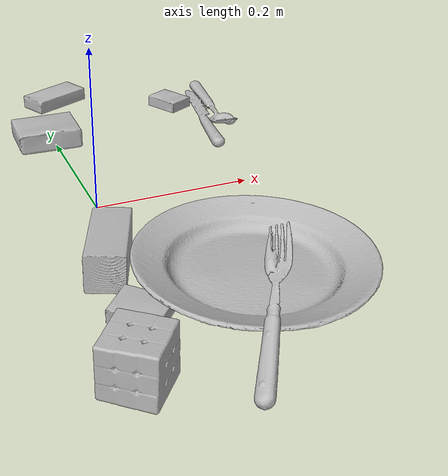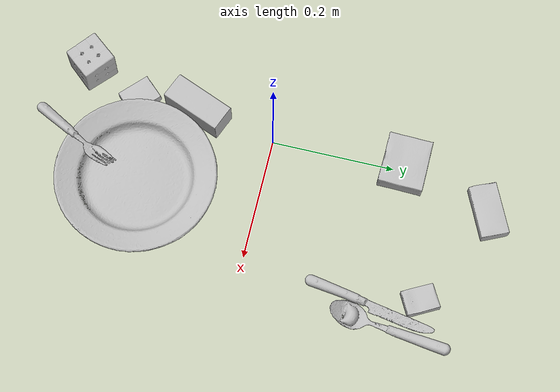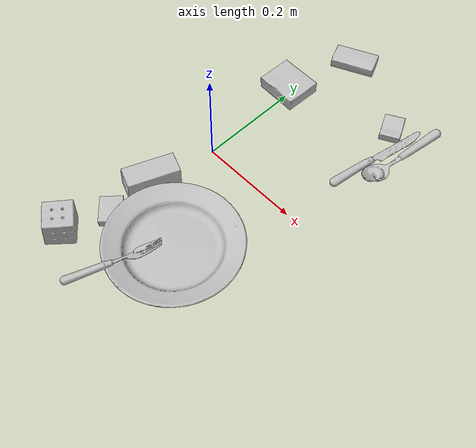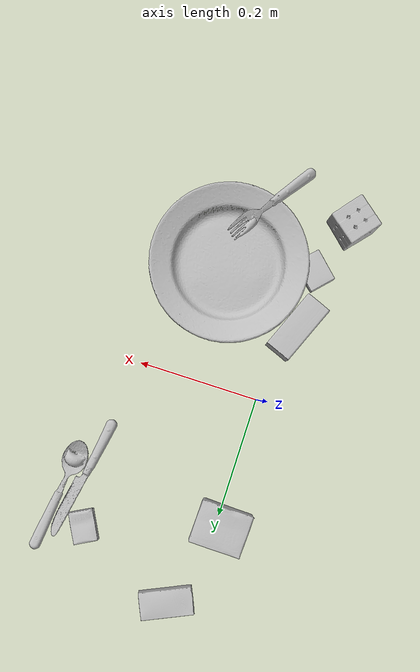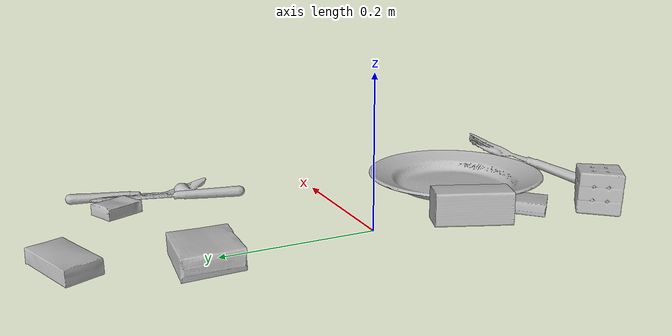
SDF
<sdf version="1.4">
  <world name="default">
    <light name="light1" type="point">
      <pose>0 0 1 0 0 0</pose>
      <diffuse>3 3 3 1</diffuse>
      <specular>3 3 3 1</specular>
    </light>
    <light name="light2" type="point">
      <pose>0 0.5 2 0 0 0</pose>
      <diffuse>1 1 1 1</diffuse>
      <specular>1 1 1 1</specular>
    </light>
    <light name="light3" type="point">
      <pose>0 0.5 2 0 0 0</pose>
      <diffuse>3 3 3 1</diffuse>
      <specular>3 3 3 1</specular>
    </light>
    <scene>
      <ambient>0.7 0.7 0.7</ambient>
    </scene>
    <model name="box11">
      <link name="link_box11">
        <collision name="default">
          <geometry>
            <mesh>
              <uri>model://gelatin_box/collision_meshes/collision.obj</uri>
              <scale>1.0 1.0 1.0</scale>
            </mesh>
          </geometry>
          <surface>
            <friction>
              <ode>
                <mu>0.5</mu>
                <mu2>0.5</mu2>
              </ode>
            </friction>
          <contact>
        <ode>
            <max_vel>0</max_vel>
            <min_depth>0.0001</min_depth>
            <kp>1e8</kp>
        </ode>
    </contact></surface>
        </collision>
        <visual name="default">
          <geometry>
            <mesh>
              <uri>model://gelatin_box/visual_meshes/visual.dae</uri>
              <scale>1.0 1.0 1.0</scale>
            </mesh>
          </geometry>
        </visual>
        <inertial>
          <mass>0.25029057264328003</mass>
          <pose>0.0004319618456065655 0.00011156871914863586 -0.0003640321083366871 -0.0010503719874808634 -0.004755820553863559 0.01644055760983946</pose>
          <inertia>
            <ixx>0.00017668474</ixx>
            <iyy>0.000126205</iyy>
            <izz>0.00026895347</izz>
            <ixy>0</ixy>
            <ixz>0</ixz>
            <iyz>0</iyz>
          </inertia>
        </inertial>
      </link>
      <pose>-0.009668262675404549 0.21617017686367035 0.015168316662311554 0.005596364769116906 -0.007303377698326931 -1.6076392332556992</pose>
    </model>
    <model name="box12">
      <link name="link_box12">
        <collision name="default">
          <geometry>
            <mesh>
              <uri>model://rubiks_cube/collision_meshes/collision.obj</uri>
              <scale>1.0 1.0 1.0</scale>
            </mesh>
          </geometry>
          <surface>
            <friction>
              <ode>
                <mu>0.5</mu>
                <mu2>0.5</mu2>
              </ode>
            </friction>
          <contact>
        <ode>
            <max_vel>0</max_vel>
            <min_depth>0.0001</min_depth>
            <kp>1e8</kp>
        </ode>
    </contact></surface>
        </collision>
        <visual name="default">
          <geometry>
            <mesh>
              <uri>model://rubiks_cube/visual_meshes/visual.dae</uri>
              <scale>1.0 1.0 1.0</scale>
            </mesh>
          </geometry>
        </visual>
        <inertial>
          <mass>0.21638615429401398</mass>
          <pose>2.6721043468569405e-05 5.2569666877388954e-05 -7.264316536748083e-06 -0.054671974778446215 -0.0981397652693683 -0.03445575269454635</pose>
          <inertia>
            <ixx>0.00011956789</ixx>
            <iyy>0.00011901029</iyy>
            <izz>0.00012055871</izz>
            <ixy>0</ixy>
            <ixz>0</ixz>
            <iyz>0</iyz>
          </inertia>
        </inertial>
      </link>
      <pose>-0.05880124121904373 -0.31853339076042175 0.028678949922323227 -5.238964719758155e-06 -2.298741826717612e-06 2.46061468485281</pose>
    </model>
    <model name="box13">
      <link name="link_box13">
        <collision name="default">
          <geometry>
            <mesh>
              <uri>model://pudding_box/collision_meshes/collision.obj</uri>
              <scale>0.5 0.5 0.5</scale>
            </mesh>
          </geometry>
          <surface>
            <friction>
              <ode>
                <mu>0.5</mu>
                <mu2>0.5</mu2>
              </ode>
            </friction>
          <contact>
        <ode>
            <max_vel>0</max_vel>
            <min_depth>0.0001</min_depth>
            <kp>1e8</kp>
        </ode>
    </contact></surface>
        </collision>
        <visual name="default">
          <geometry>
            <mesh>
              <uri>model://pudding_box/visual_meshes/visual.dae</uri>
              <scale>0.5 0.5 0.5</scale>
            </mesh>
          </geometry>
        </visual>
        <inertial>
          <mass>0.024692855775356293</mass>
          <pose>0.00024474109522998333 0.00040339428232982755 -0.0002594413817860186 0.005213102294063647 -0.006603794537377036 0.020079827031592012</pose>
          <inertia>
            <ixx>6.9785e-06</ixx>
            <iyy>4.695185e-06</iyy>
            <izz>1.030558e-05</izz>
            <ixy>0</ixy>
            <ixz>0</ixz>
            <iyz>0</iyz>
          </inertia>
        </inertial>
      </link>
      <pose>-0.02463829331099987 -0.22981731593608856 0.009862905368208885 0.02234840137058356 -0.011391818079427716 0.8141221344814752</pose>
    </model>
    <model name="box21">
      <link name="link_box21">
        <collision name="default">
          <geometry>
            <mesh>
              <uri>model://wood_block/collision_meshes/collision.obj</uri>
              <scale>0.5 0.5 0.5</scale>
            </mesh>
          </geometry>
          <surface>
            <friction>
              <ode>
                <mu>0.5</mu>
                <mu2>0.5</mu2>
              </ode>
            </friction>
          <contact>
        <ode>
            <max_vel>0</max_vel>
            <min_depth>0.0001</min_depth>
            <kp>1e8</kp>
        </ode>
    </contact></surface>
        </collision>
        <visual name="default">
          <geometry>
            <mesh>
              <uri>model://wood_block/visual_meshes/visual.dae</uri>
              <scale>0.5 0.5 0.5</scale>
            </mesh>
          </geometry>
        </visual>
        <inertial>
          <mass>0.2621258497238159</mass>
          <pose>-2.9066577553749084e-06 -0.000285404734313488 0.00013204291462898254 -0.05220799390803197 -0.005192696360797016 -0.006861376940793837</pose>
          <inertia>
            <ixx>8.7691005e-05</ixx>
            <iyy>0.00027701593</iyy>
            <izz>0.00027597975</izz>
            <ixy>0</ixy>
            <ixz>0</ixz>
            <iyz>0</iyz>
          </inertia>
        </inertial>
      </link>
      <pose>-0.025221729651093483 -0.13130174577236176 0.022527199238538742 -0.01586002464173458 -0.0004140828511597174 -1.9528069035144047</pose>
    </model>
    <model name="box22">
      <link name="link_box22">
        <collision name="default">
          <geometry>
            <mesh>
              <uri>model://cracker_box/collision_meshes/collision.obj</uri>
              <scale>0.25 0.25 0.25</scale>
            </mesh>
          </geometry>
          <surface>
            <friction>
              <ode>
                <mu>0.5</mu>
                <mu2>0.5</mu2>
              </ode>
            </friction>
          <contact>
        <ode>
            <max_vel>0</max_vel>
            <min_depth>0.0001</min_depth>
            <kp>1e8</kp>
        </ode>
    </contact></surface>
        </collision>
        <visual name="default">
          <geometry>
            <mesh>
              <uri>model://cracker_box/visual_meshes/visual.dae</uri>
              <scale>0.25 0.25 0.25</scale>
            </mesh>
          </geometry>
        </visual>
        <inertial>
          <mass>0.04544714838266373</mass>
          <pose>0.0002366049593547359 6.358561950037256e-05 -0.0004257383698131889 -0.0003162075981767565 -0.011106493326025165 0.0025467940711340945</pose>
          <inertia>
            <ixx>7.224829e-06</ixx>
            <iyy>1.1929612e-05</iyy>
            <izz>1.702465e-05</izz>
            <ixy>0</ixy>
            <ixz>0</ixz>
            <iyz>0</iyz>
          </inertia>
        </inertial>
      </link>
      <pose>0.2053108513355255 0.28400495648384094 0.009120453149080276 -0.011788230772487385 -0.007367164446083219 2.0594304345410204</pose>
    </model>
    <model name="box23">
      <link name="link_box23">
        <collision name="default">
          <geometry>
            <mesh>
              <uri>model://sugar_box/collision_meshes/collision.obj</uri>
              <scale>0.5 0.5 0.5</scale>
            </mesh>
          </geometry>
          <surface>
            <friction>
              <ode>
                <mu>0.5</mu>
                <mu2>0.5</mu2>
              </ode>
            </friction>
          <contact>
        <ode>
            <max_vel>0</max_vel>
            <min_depth>0.0001</min_depth>
            <kp>1e8</kp>
        </ode>
    </contact></surface>
        </collision>
        <visual name="default">
          <geometry>
            <mesh>
              <uri>model://sugar_box/visual_meshes/visual.dae</uri>
              <scale>0.5 0.5 0.5</scale>
            </mesh>
          </geometry>
        </visual>
        <inertial>
          <mass>0.08974423259496689</mass>
          <pose>0.0005171863595023751 1.924554817378521e-05 -0.00018182402709499002 -0.00040462647498757867 0.0010506636387592515 0.0026153785559760484</pose>
          <inertia>
            <ixx>1.869366e-05</ixx>
            <iyy>6.0421757e-05</iyy>
            <izz>7.233205e-05</izz>
            <ixy>0</ixy>
            <ixz>0</ixz>
            <iyz>0</iyz>
          </inertia>
        </inertial>
      </link>
      <pose>0.03783910721540451 0.3602825105190277 0.011399311944842339 0.000775287979152082 -0.023432726190252565 0.41692810778879974</pose>
    </model>
    <model name="plate1">
      <link name="link_plate1">
        <collision name="default">
          <geometry>
            <mesh>
              <uri>model://plate/collision_meshes/collision.obj</uri>
              <scale>1.0 1.0 1.0</scale>
            </mesh>
          </geometry>
          <surface>
            <friction>
              <ode>
                <mu>0.5</mu>
                <mu2>0.5</mu2>
              </ode>
            </friction>
          <contact>
        <ode>
            <max_vel>0</max_vel>
            <min_depth>0.0001</min_depth>
            <kp>1e8</kp>
        </ode>
    </contact></surface>
        </collision>
        <visual name="default">
          <geometry>
            <mesh>
              <uri>model://plate/visual_meshes/visual.dae</uri>
              <scale>1.0 1.0 1.0</scale>
            </mesh>
          </geometry>
        </visual>
        <inertial>
          <mass>0.25075921416282654</mass>
          <pose>-0.0006044597248546779 0.00027825814322568476 -0.0010562010575085878 0.0022187872861569474 -0.003225478732834207 0.4526086398584511</pose>
          <inertia>
            <ixx>0.0011730565</ixx>
            <iyy>0.0011618367</iyy>
            <izz>0.0022943232</izz>
            <ixy>0</ixy>
            <ixz>0</ixz>
            <iyz>0</iyz>
          </inertia>
        </inertial>
      </link>
      <pose>0.11226645857095718 -0.1984744668006897 0.013733004219830036 1.0014717825141655e-08 1.546607687609462e-08 -3.015723949154331</pose>
    </model>
    <model name="silverware1">
      <link name="link_silverware1">
        <collision name="default">
          <geometry>
            <mesh>
              <uri>model://spoon/collision_meshes/collision.obj</uri>
              <scale>1.0 1.0 1.0</scale>
            </mesh>
          </geometry>
          <surface>
            <friction>
              <ode>
                <mu>0.5</mu>
                <mu2>0.5</mu2>
              </ode>
            </friction>
          <contact>
        <ode>
            <max_vel>0</max_vel>
            <min_depth>0.0001</min_depth>
            <kp>1e8</kp>
        </ode>
    </contact></surface>
        </collision>
        <visual name="default">
          <geometry>
            <mesh>
              <uri>model://spoon/visual_meshes/visual.dae</uri>
              <scale>1.0 1.0 1.0</scale>
            </mesh>
          </geometry>
        </visual>
        <inertial>
          <mass>0.036317918449640274</mass>
          <pose>-0.005526306107640266 -0.0016034167492762208 -0.0007271648501046002 0.03521625205726148 -0.039065835985121374 0.0061506181118877856</pose>
          <inertia>
            <ixx>2.0200612e-06</ixx>
            <iyy>0.00013818844</iyy>
            <izz>0.00013918467</izz>
            <ixy>0</ixy>
            <ixz>0</ixz>
            <iyz>0</iyz>
          </inertia>
        </inertial>
      </link>
      <pose>0.263339638710022 0.245969757437706 0.008383097127079964 -0.013377164941917622 0.026689055984316645 -1.699039884573542</pose>
    </model>
    <model name="silverware2">
      <link name="link_silverware2">
        <collision name="default">
          <geometry>
            <mesh>
              <uri>model://knife/collision_meshes/collision.obj</uri>
              <scale>1.0 1.0 1.0</scale>
            </mesh>
          </geometry>
          <surface>
            <friction>
              <ode>
                <mu>0.5</mu>
                <mu2>0.5</mu2>
              </ode>
            </friction>
          <contact>
        <ode>
            <max_vel>0</max_vel>
            <min_depth>0.0001</min_depth>
            <kp>1e8</kp>
        </ode>
    </contact></surface>
        </collision>
        <visual name="default">
          <geometry>
            <mesh>
              <uri>model://knife/visual_meshes/visual.dae</uri>
              <scale>1.0 1.0 1.0</scale>
            </mesh>
          </geometry>
        </visual>
        <inertial>
          <mass>0.03166225552558899</mass>
          <pose>-0.02378525584936142 0.0015275123296305537 5.0620161346159875e-05 0.07305183970819301 0.01724842094470774 -0.007409827313526415</pose>
          <inertia>
            <ixx>8.9870355e-07</ixx>
            <iyy>0.00012164128</iyy>
            <izz>0.00012193073</izz>
            <ixy>0</ixy>
            <ixz>0</ixz>
            <iyz>0</iyz>
          </inertia>
        </inertial>
      </link>
      <pose>0.23249682784080505 0.2084234654903412 0.007956129498779774 -0.02952455750563681 -0.014431643631762804 1.3853251917671847</pose>
    </model>
    <model name="silverware3">
      <link name="link_silverware3">
        <collision name="default">
          <geometry>
            <mesh>
              <uri>model://fork/collision_meshes/collision.obj</uri>
              <scale>1.0 1.0 1.0</scale>
            </mesh>
          </geometry>
          <surface>
            <friction>
              <ode>
                <mu>0.5</mu>
                <mu2>0.5</mu2>
              </ode>
            </friction>
          <contact>
        <ode>
            <max_vel>0</max_vel>
            <min_depth>0.0001</min_depth>
            <kp>1e8</kp>
        </ode>
    </contact></surface>
        </collision>
        <visual name="default">
          <geometry>
            <mesh>
              <uri>model://fork/visual_meshes/visual.dae</uri>
              <scale>1.0 1.0 1.0</scale>
            </mesh>
          </geometry>
        </visual>
        <inertial>
          <mass>0.03018845245242119</mass>
          <pose>-0.029570050537586212 0.00046588227269239724 0.00032188609475269914 -0.013551782414775644 -0.010977841906558662 0.014453907874592884</pose>
          <inertia>
            <ixx>1.0582761e-06</ixx>
            <iyy>7.881335e-05</iyy>
            <izz>7.928668e-05</izz>
            <ixy>0</ixy>
            <ixz>0</ixz>
            <iyz>0</iyz>
          </inertia>
        </inertial>
      </link>
      <pose>0.07497026026248932 -0.3083990514278412 0.03729996085166931 -0.34624054545627236 -0.32723837500035785 1.0099165688509502</pose>
    </model>
  <physics type="ode">
      <max_contacts>50</max_contacts>
      <ode>
        <solver>
          <type>quick</type>
          <iters>75</iters>
        </solver>
        <constraints>
          <contact_max_correcting_vel>0</contact_max_correcting_vel>
          <contact_surface_layer>0</contact_surface_layer>
        </constraints>
      </ode>
    </physics></world>
</sdf>
